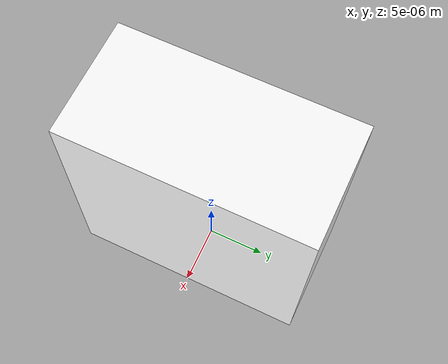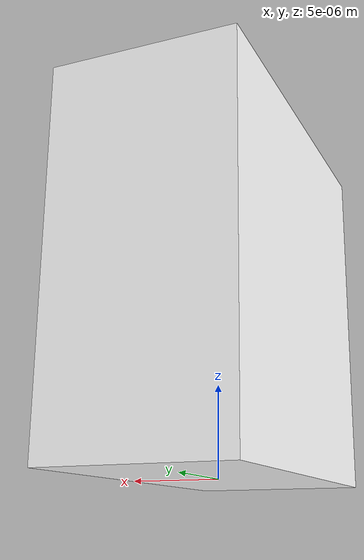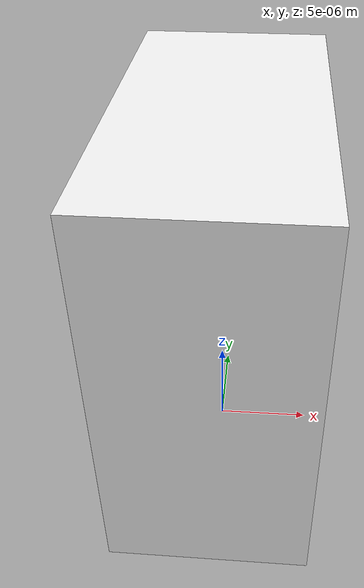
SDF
<?xml version='1.0'?>
<sdf version='1.6'>
  <model name='target_box'>
    <link name='link'>
      <inertial>
        <mass>0</mass>
        <inertia>
          <ixx>0.166667</ixx>
          <ixy>0</ixy>
          <ixz>0</ixz>
          <iyy>0.166667</iyy>
          <iyz>0</iyz>
          <izz>0.166667</izz>
        </inertia>
        <pose frame=''>0 0 0 0 -0 0</pose>
      </inertial>
      <self_collide>0</self_collide>
      <enable_wind>0</enable_wind>
      <kinematic>0</kinematic>
      <pose frame=''>0 0 0 0 -0 0</pose>
      <gravity>1</gravity>
      <visual name='visual'>
        <geometry>
          <mesh>
            <uri>model://target_box/meshes/cubeMesh.dae</uri>
            <scale>0.05 0.1 0.1</scale>
          </mesh>
        </geometry>
        <material>
          <lighting>1</lighting>
          <script>
            <uri>model://target_box/materials/scripts</uri>
            <uri>model://target_box/materials/textures</uri>
            <name>target_box/Diffuse</name>
          </script>
          <shader type='vertex'>
            <normal_map>__default__</normal_map>
          </shader>
          <ambient>1 1 1 1</ambient>
          <diffuse>1 1 1 1</diffuse>
          <specular>0 0 0 1</specular>
          <emissive>0 0 0 1</emissive>
        </material>
        <pose frame=''>0 0 0 0 -0 0</pose>
        <transparency>0</transparency>
        <cast_shadows>1</cast_shadows>
      </visual>
    </link>
    <static>0</static>
    <allow_auto_disable>1</allow_auto_disable>
  </model>
</sdf>
